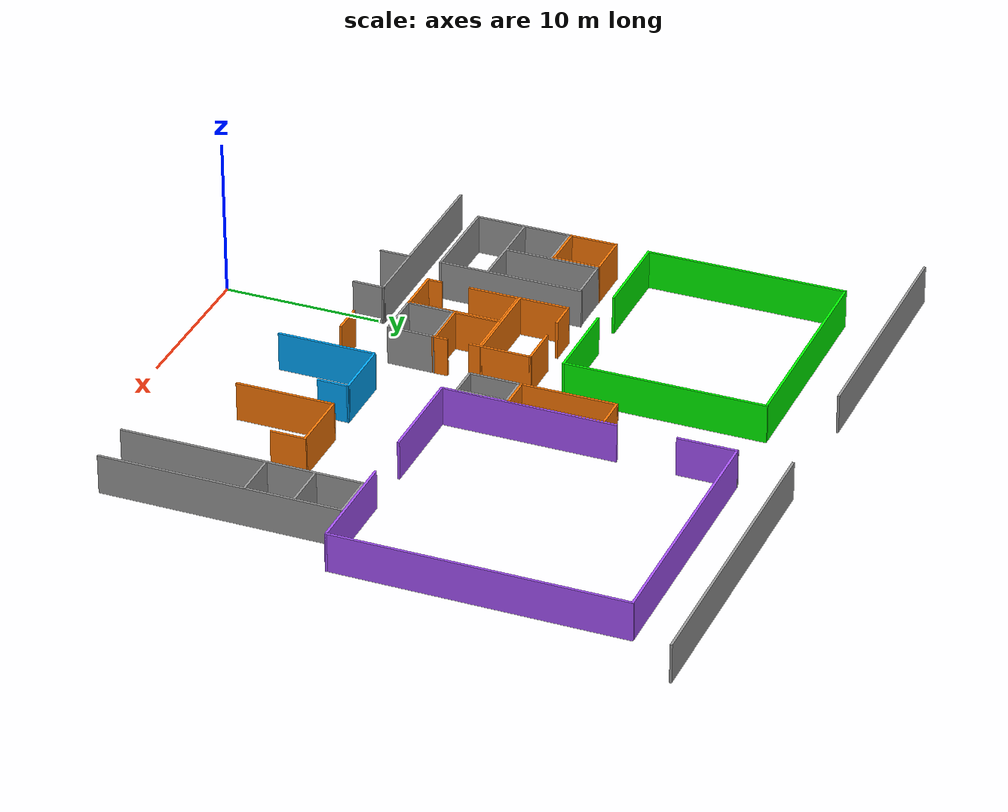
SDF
<sdf version="1.6">
 <model name="rebuilt_1">
  <pose>-2.12726 -2.76078 0 0 -0 0</pose>
  <link name="Wall_0">
   <collision name="Wall_0_Collision">
    <geometry><box><size>14 0.15 2.5</size></box></geometry>
    <pose>0 0 1.25 0 -0 0</pose>
   </collision>
   <visual name="Wall_0_Visual">
    <pose>0 0 1.25 0 -0 0</pose>
    <geometry><box><size>14 0.15 2.5</size></box></geometry>
    <material>
     <script><uri>file://media/materials/scripts/gazebo.material</uri><name>Gazebo/Grey</name></script>
     <ambient>0 1 0 1</ambient>
    </material>
    <meta><layer>0</layer></meta>
   </visual>
   <pose>-0.804476 39.0362 0 0 -0 3.14159</pose>
  </link>
  <link name="Wall_1">
   <collision name="Wall_1_Collision">
    <geometry><box><size>12.75 0.15 2.5</size></box></geometry>
    <pose>0 0 1.25 0 -0 0</pose>
   </collision>
   <visual name="Wall_1_Visual">
    <pose>0 0 1.25 0 -0 0</pose>
    <geometry><box><size>12.75 0.15 2.5</size></box></geometry>
    <material>
     <script><uri>file://media/materials/scripts/gazebo.material</uri><name>Gazebo/Grey</name></script>
     <ambient>0 1 0 1</ambient>
    </material>
    <meta><layer>0</layer></meta>
   </visual>
   <pose>-7.72948 32.7362 0 0 0 -1.5708</pose>
  </link>
  <link name="Wall_100">
   <collision name="Wall_100_Collision">
    <geometry><box><size>7 0.15 2.5</size></box></geometry>
    <pose>0 0 1.25 0 -0 0</pose>
   </collision>
   <visual name="Wall_100_Visual">
    <pose>0 0 1.25 0 -0 0</pose>
    <geometry><box><size>7 0.15 2.5</size></box></geometry>
    <material>
     <script><uri>file://media/materials/scripts/gazebo.material</uri><name>Gazebo/Grey</name></script>
     <ambient>0.666667 0.333333 1 1</ambient>
    </material>
    <meta><layer>0</layer></meta>
   </visual>
   <pose>24.6152 20.8683 0 0 -0 3.14159</pose>
  </link>
  <link name="Wall_102">
   <collision name="Wall_102_Collision">
    <geometry><box><size>4.16873 0.15 2.5</size></box></geometry>
    <pose>0 0 1.25 0 -0 0</pose>
   </collision>
   <visual name="Wall_102_Visual">
    <pose>0 0 1.25 0 -0 0</pose>
    <geometry><box><size>4.16873 0.15 2.5</size></box></geometry>
    <material>
     <script><uri>file://media/materials/scripts/gazebo.material</uri><name>Gazebo/Grey</name></script>
     <ambient>0.996078 0.47451 0.0196078 1</ambient>
    </material>
    <meta><layer>0</layer></meta>
   </visual>
   <pose>17.4391 15.7517 0 0 -0 0</pose>
  </link>
  <link name="Wall_105">
   <collision name="Wall_105_Collision">
    <geometry><box><size>6.25 0.15 2.5</size></box></geometry>
    <pose>0 0 1.25 0 -0 0</pose>
   </collision>
   <visual name="Wall_105_Visual">
    <pose>0 0 1.25 0 -0 0</pose>
    <geometry><box><size>6.25 0.15 2.5</size></box></geometry>
    <material>
     <script><uri>file://media/materials/scripts/gazebo.material</uri><name>Gazebo/Grey</name></script>
     <ambient>0.996078 0.47451 0.0196078 1</ambient>
    </material>
    <meta><layer>0</layer></meta>
   </visual>
   <pose>15.4298 12.7017 0 0 -0 1.5708</pose>
  </link>
  <link name="Wall_107">
   <collision name="Wall_107_Collision">
    <geometry><box><size>2.25 0.15 2.5</size></box></geometry>
    <pose>0 0 1.25 0 -0 0</pose>
   </collision>
   <visual name="Wall_107_Visual">
    <pose>0 0 1.25 0 -0 0</pose>
    <geometry><box><size>2.25 0.15 2.5</size></box></geometry>
    <material>
     <script><uri>file://media/materials/scripts/gazebo.material</uri><name>Gazebo/Grey</name></script>
     <ambient>0.996078 0.47451 0.0196078 1</ambient>
    </material>
    <meta><layer>0</layer></meta>
   </visual>
   <pose>19.4485 14.7017 0 0 0 -1.5708</pose>
  </link>
  <link name="Wall_11">
   <collision name="Wall_11_Collision">
    <geometry><box><size>18.3877 0.15 2.5</size></box></geometry>
    <pose>0 0 1.25 0 -0 0</pose>
   </collision>
   <visual name="Wall_11_Visual">
    <pose>0 0 1.25 0 -0 0</pose>
    <geometry><box><size>18.3877 0.15 2.5</size></box></geometry>
    <material>
     <script><uri>file://media/materials/scripts/gazebo.material</uri><name>Gazebo/Grey</name></script>
     <ambient>0.666667 0.333333 1 1</ambient>
    </material>
    <meta><layer>0</layer></meta>
   </visual>
   <pose>28.0372 29.9871 0 0 0 -1.57047</pose>
  </link>
  <link name="Wall_111">
   <collision name="Wall_111_Collision">
    <geometry><box><size>4.0365 0.15 2.5</size></box></geometry>
    <pose>0 0 1.25 0 -0 0</pose>
   </collision>
   <visual name="Wall_111_Visual">
    <pose>0 0 1.25 0 -0 0</pose>
    <geometry><box><size>4.0365 0.15 2.5</size></box></geometry>
    <material>
     <script><uri>file://media/materials/scripts/gazebo.material</uri><name>Gazebo/Grey</name></script>
     <ambient>0 0.666667 1 1</ambient>
    </material>
    <meta><layer>0</layer></meta>
   </visual>
   <pose>11.3657 15.726 0 0 -0 0.00469</pose>
  </link>
  <link name="Wall_114">
   <collision name="Wall_114_Collision">
    <geometry><box><size>6.25 0.15 2.5</size></box></geometry>
    <pose>0 0 1.25 0 -0 0</pose>
   </collision>
   <visual name="Wall_114_Visual">
    <pose>0 0 1.25 0 -0 0</pose>
    <geometry><box><size>6.25 0.15 2.5</size></box></geometry>
    <material>
     <script><uri>file://media/materials/scripts/gazebo.material</uri><name>Gazebo/Grey</name></script>
     <ambient>0 0.666667 1 1</ambient>
    </material>
    <meta><layer>0</layer></meta>
   </visual>
   <pose>9.40422 12.6669 0 0 -0 1.5708</pose>
  </link>
  <link name="Wall_118">
   <collision name="Wall_118_Collision">
    <geometry><box><size>2 0.15 2.5</size></box></geometry>
    <pose>0 0 1.25 0 -0 0</pose>
   </collision>
   <visual name="Wall_118_Visual">
    <pose>0 0 1.25 0 -0 0</pose>
    <geometry><box><size>2 0.15 2.5</size></box></geometry>
    <material>
     <script><uri>file://media/materials/scripts/gazebo.material</uri><name>Gazebo/Grey</name></script>
     <ambient>0 0.666667 1 1</ambient>
    </material>
    <meta><layer>0</layer></meta>
   </visual>
   <pose>13.3089 14.8101 0 0 0 -1.5708</pose>
  </link>
  <link name="Wall_124">
   <collision name="Wall_124_Collision">
    <geometry><box><size>3.13547 0.15 2.5</size></box></geometry>
    <pose>0 0 1.25 0 -0 0</pose>
   </collision>
   <visual name="Wall_124_Visual">
    <pose>0 0 1.25 0 -0 0</pose>
    <geometry><box><size>3.13547 0.15 2.5</size></box></geometry>
    <material>
     <script><uri>file://media/materials/scripts/gazebo.material</uri><name>Gazebo/Grey</name></script>
     <ambient>1 1 1 1</ambient>
    </material>
    <meta><layer>0</layer></meta>
   </visual>
   <pose>24.0269 20.7273 0 0 -0 0</pose>
  </link>
  <link name="Wall_13">
   <collision name="Wall_13_Collision">
    <geometry><box><size>11 0.15 2.5</size></box></geometry>
    <pose>0 0 1.25 0 -0 0</pose>
   </collision>
   <visual name="Wall_13_Visual">
    <pose>0 0 1.25 0 -0 0</pose>
    <geometry><box><size>11 0.15 2.5</size></box></geometry>
    <material>
     <script><uri>file://media/materials/scripts/gazebo.material</uri><name>Gazebo/Grey</name></script>
     <ambient>0.666667 0.333333 1 1</ambient>
    </material>
    <meta><layer>0</layer></meta>
   </visual>
   <pose>11.4402 26.2933 0 0 -0 1.5708</pose>
  </link>
  <link name="Wall_133">
   <collision name="Wall_133_Collision">
    <geometry><box><size>15.25 0.15 2.5</size></box></geometry>
    <pose>0 0 1.25 0 -0 0</pose>
   </collision>
   <visual name="Wall_133_Visual">
    <pose>0 0 1.25 0 -0 0</pose>
    <geometry><box><size>15.25 0.15 2.5</size></box></geometry>
    <material>
     <script><uri>file://media/materials/scripts/gazebo.material</uri><name>Gazebo/Grey</name></script>
     <ambient>1 1 1 1</ambient>
    </material>
    <meta><layer>0</layer></meta>
   </visual>
   <pose>22.5342 13.1773 0 0 0 -1.5708</pose>
  </link>
  <link name="Wall_135">
   <collision name="Wall_135_Collision">
    <geometry><box><size>15.25 0.15 2.5</size></box></geometry>
    <pose>0 0 1.25 0 -0 0</pose>
   </collision>
   <visual name="Wall_135_Visual">
    <pose>0 0 1.25 0 -0 0</pose>
    <geometry><box><size>15.25 0.15 2.5</size></box></geometry>
    <material>
     <script><uri>file://media/materials/scripts/gazebo.material</uri><name>Gazebo/Grey</name></script>
     <ambient>1 1 1 1</ambient>
    </material>
    <meta><layer>0</layer></meta>
   </visual>
   <pose>25.5196 13.1773 0 0 0 -1.5708</pose>
  </link>
  <link name="Wall_143">
   <collision name="Wall_143_Collision">
    <geometry><box><size>3 0.15 2.5</size></box></geometry>
    <pose>0 0 1.25 0 -0 0</pose>
   </collision>
   <visual name="Wall_143_Visual">
    <pose>0 0 1.25 0 -0 0</pose>
    <geometry><box><size>3 0.15 2.5</size></box></geometry>
    <material>
     <script><uri>file://media/materials/scripts/gazebo.material</uri><name>Gazebo/Grey</name></script>
     <ambient>1 1 1 1</ambient>
    </material>
    <meta><layer>0</layer></meta>
   </visual>
   <pose>24.0168 14.7218 0 0 -0 0</pose>
  </link>
  <link name="Wall_145">
   <collision name="Wall_145_Collision">
    <geometry><box><size>3 0.15 2.5</size></box></geometry>
    <pose>0 0 1.25 0 -0 0</pose>
   </collision>
   <visual name="Wall_145_Visual">
    <pose>0 0 1.25 0 -0 0</pose>
    <geometry><box><size>3 0.15 2.5</size></box></geometry>
    <material>
     <script><uri>file://media/materials/scripts/gazebo.material</uri><name>Gazebo/Grey</name></script>
     <ambient>1 1 1 1</ambient>
    </material>
    <meta><layer>0</layer></meta>
   </visual>
   <pose>23.9986 17.7839 0 0 -0 0</pose>
  </link>
  <link name="Wall_21">
   <collision name="Wall_21_Collision">
    <geometry><box><size>2.1197 0.15 2.5</size></box></geometry>
    <pose>0 0 1.25 0 -0 0</pose>
   </collision>
   <visual name="Wall_21_Visual">
    <pose>0 0 1.25 0 -0 0</pose>
    <geometry><box><size>2.1197 0.15 2.5</size></box></geometry>
    <material>
     <script><uri>file://media/materials/scripts/gazebo.material</uri><name>Gazebo/Grey</name></script>
     <ambient>1 1 1 1</ambient>
    </material>
    <meta><layer>0</layer></meta>
   </visual>
   <pose>10.3398 24.8691 0 0 -0 0</pose>
  </link>
  <link name="Wall_22">
   <collision name="Wall_22_Collision">
    <geometry><box><size>3.25 0.15 2.5</size></box></geometry>
    <pose>0 0 1.25 0 -0 0</pose>
   </collision>
   <visual name="Wall_22_Visual">
    <pose>0 0 1.25 0 -0 0</pose>
    <geometry><box><size>3.25 0.15 2.5</size></box></geometry>
    <material>
     <script><uri>file://media/materials/scripts/gazebo.material</uri><name>Gazebo/Grey</name></script>
     <ambient>1 1 1 1</ambient>
    </material>
    <meta><layer>0</layer></meta>
   </visual>
   <pose>11.3247 23.3191 0 0 0 -1.5708</pose>
  </link>
  <link name="Wall_23">
   <collision name="Wall_23_Collision">
    <geometry><box><size>2.1197 0.15 2.5</size></box></geometry>
    <pose>0 0 1.25 0 -0 0</pose>
   </collision>
   <visual name="Wall_23_Visual">
    <pose>0 0 1.25 0 -0 0</pose>
    <geometry><box><size>2.1197 0.15 2.5</size></box></geometry>
    <material>
     <script><uri>file://media/materials/scripts/gazebo.material</uri><name>Gazebo/Grey</name></script>
     <ambient>1 1 1 1</ambient>
    </material>
    <meta><layer>0</layer></meta>
   </visual>
   <pose>10.3398 21.7691 0 0 -0 3.14159</pose>
  </link>
  <link name="Wall_24">
   <collision name="Wall_24_Collision">
    <geometry><box><size>3.25 0.15 2.5</size></box></geometry>
    <pose>0 0 1.25 0 -0 0</pose>
   </collision>
   <visual name="Wall_24_Visual">
    <pose>0 0 1.25 0 -0 0</pose>
    <geometry><box><size>3.25 0.15 2.5</size></box></geometry>
    <material>
     <script><uri>file://media/materials/scripts/gazebo.material</uri><name>Gazebo/Grey</name></script>
     <ambient>1 1 1 1</ambient>
    </material>
    <meta><layer>0</layer></meta>
   </visual>
   <pose>9.35496 23.3191 0 0 -0 1.5708</pose>
  </link>
  <link name="Wall_26">
   <collision name="Wall_26_Collision">
    <geometry><box><size>2.18113 0.15 2.5</size></box></geometry>
    <pose>0 0 1.25 0 -0 0</pose>
   </collision>
   <visual name="Wall_26_Visual">
    <pose>0 0 1.25 0 -0 0</pose>
    <geometry><box><size>2.18113 0.15 2.5</size></box></geometry>
    <material>
     <script><uri>file://media/materials/scripts/gazebo.material</uri><name>Gazebo/Grey</name></script>
     <ambient>0.996078 0.47451 0.0196078 1</ambient>
    </material>
    <meta><layer>0</layer></meta>
   </visual>
   <pose>10.3615 30.9426 0 0 -0 0</pose>
  </link>
  <link name="Wall_27">
   <collision name="Wall_27_Collision">
    <geometry><box><size>6.07776 0.15 2.5</size></box></geometry>
    <pose>0 0 1.25 0 -0 0</pose>
   </collision>
   <visual name="Wall_27_Visual">
    <pose>0 0 1.25 0 -0 0</pose>
    <geometry><box><size>6.07776 0.15 2.5</size></box></geometry>
    <material>
     <script><uri>file://media/materials/scripts/gazebo.material</uri><name>Gazebo/Grey</name></script>
     <ambient>0.996078 0.47451 0.0196078 1</ambient>
    </material>
    <meta><layer>0</layer></meta>
   </visual>
   <pose>11.3771 27.9787 0 0 0 -1.56934</pose>
  </link>
  <link name="Wall_28">
   <collision name="Wall_28_Collision">
    <geometry><box><size>2.17693 0.15 2.5</size></box></geometry>
    <pose>0 0 1.25 0 -0 0</pose>
   </collision>
   <visual name="Wall_28_Visual">
    <pose>0 0 1.25 0 -0 0</pose>
    <geometry><box><size>2.17693 0.15 2.5</size></box></geometry>
    <material>
     <script><uri>file://media/materials/scripts/gazebo.material</uri><name>Gazebo/Grey</name></script>
     <ambient>0.996078 0.47451 0.0196078 1</ambient>
    </material>
    <meta><layer>0</layer></meta>
   </visual>
   <pose>10.368 25.0191 0 0 -0 3.14159</pose>
  </link>
  <link name="Wall_29">
   <collision name="Wall_29_Collision">
    <geometry><box><size>6.07345 0.15 2.5</size></box></geometry>
    <pose>0 0 1.25 0 -0 0</pose>
   </collision>
   <visual name="Wall_29_Visual">
    <pose>0 0 1.25 0 -0 0</pose>
    <geometry><box><size>6.07345 0.15 2.5</size></box></geometry>
    <material>
     <script><uri>file://media/materials/scripts/gazebo.material</uri><name>Gazebo/Grey</name></script>
     <ambient>0.996078 0.47451 0.0196078 1</ambient>
    </material>
    <meta><layer>0</layer></meta>
   </visual>
   <pose>9.34596 27.9808 0 0 -0 1.57225</pose>
  </link>
  <link name="Wall_3">
   <collision name="Wall_3_Collision">
    <geometry><box><size>12.75 0.15 2.5</size></box></geometry>
    <pose>0 0 1.25 0 -0 0</pose>
   </collision>
   <visual name="Wall_3_Visual">
    <pose>0 0 1.25 0 -0 0</pose>
    <geometry><box><size>12.75 0.15 2.5</size></box></geometry>
    <material>
     <script><uri>file://media/materials/scripts/gazebo.material</uri><name>Gazebo/Grey</name></script>
     <ambient>0 1 0 1</ambient>
    </material>
    <meta><layer>0</layer></meta>
   </visual>
   <pose>6.24681 32.7338 0 0 -0 1.5708</pose>
  </link>
  <link name="Wall_363">
   <collision name="Wall_363_Collision">
    <geometry><box><size>6.11662 0.15 2.5</size></box></geometry>
    <pose>0 0 1.25 0 -0 0</pose>
   </collision>
   <visual name="Wall_363_Visual">
    <pose>0 0 1.25 0 -0 0</pose>
    <geometry><box><size>6.11662 0.15 2.5</size></box></geometry>
    <material>
     <script><uri>file://media/materials/scripts/gazebo.material</uri><name>Gazebo/Grey</name></script>
     <ambient>1 1 1 1</ambient>
    </material>
    <meta><layer>0</layer></meta>
   </visual>
   <pose>-4.83119 15.2081 0 0 -0 0</pose>
  </link>
  <link name="Wall_364">
   <collision name="Wall_364_Collision">
    <geometry><box><size>9.25 0.15 2.5</size></box></geometry>
    <pose>0 0 1.25 0 -0 0</pose>
   </collision>
   <visual name="Wall_364_Visual">
    <pose>0 0 1.25 0 -0 0</pose>
    <geometry><box><size>9.25 0.15 2.5</size></box></geometry>
    <material>
     <script><uri>file://media/materials/scripts/gazebo.material</uri><name>Gazebo/Grey</name></script>
     <ambient>1 1 1 1</ambient>
    </material>
    <meta><layer>0</layer></meta>
   </visual>
   <pose>-1.84803 19.7581 0 0 -0 1.5708</pose>
  </link>
  <link name="Wall_365">
   <collision name="Wall_365_Collision">
    <geometry><box><size>3 0.15 2.5</size></box></geometry>
    <pose>0 0 1.25 0 -0 0</pose>
   </collision>
   <visual name="Wall_365_Visual">
    <pose>0 0 1.25 0 -0 0</pose>
    <geometry><box><size>3 0.15 2.5</size></box></geometry>
    <material>
     <script><uri>file://media/materials/scripts/gazebo.material</uri><name>Gazebo/Grey</name></script>
     <ambient>1 1 1 1</ambient>
    </material>
    <meta><layer>0</layer></meta>
   </visual>
   <pose>-3.31181 24.2693 0 0 -0 3.14159</pose>
  </link>
  <link name="Wall_366">
   <collision name="Wall_366_Collision">
    <geometry><box><size>6 0.15 2.5</size></box></geometry>
    <pose>0 0 1.25 0 -0 0</pose>
   </collision>
   <visual name="Wall_366_Visual">
    <pose>0 0 1.25 0 -0 0</pose>
    <geometry><box><size>6 0.15 2.5</size></box></geometry>
    <material>
     <script><uri>file://media/materials/scripts/gazebo.material</uri><name>Gazebo/Grey</name></script>
     <ambient>1 1 1 1</ambient>
    </material>
    <meta><layer>0</layer></meta>
   </visual>
   <pose>-4.73681 21.3443 0 0 0 -1.5708</pose>
  </link>
  <link name="Wall_369">
   <collision name="Wall_369_Collision">
    <geometry><box><size>6.19392 0.15 2.5</size></box></geometry>
    <pose>0 0 1.25 0 -0 0</pose>
   </collision>
   <visual name="Wall_369_Visual">
    <pose>0 0 1.25 0 -0 0</pose>
    <geometry><box><size>6.19392 0.15 2.5</size></box></geometry>
    <material>
     <script><uri>file://media/materials/scripts/gazebo.material</uri><name>Gazebo/Grey</name></script>
     <ambient>1 1 1 1</ambient>
    </material>
    <meta><layer>0</layer></meta>
   </visual>
   <pose>-7.80467 18.2688 0 0 -0 1.56759</pose>
  </link>
  <link name="Wall_370">
   <collision name="Wall_370_Collision">
    <geometry><box><size>3.11633 0.15 2.5</size></box></geometry>
    <pose>0 0 1.25 0 -0 0</pose>
   </collision>
   <visual name="Wall_370_Visual">
    <pose>0 0 1.25 0 -0 0</pose>
    <geometry><box><size>3.11633 0.15 2.5</size></box></geometry>
    <material>
     <script><uri>file://media/materials/scripts/gazebo.material</uri><name>Gazebo/Grey</name></script>
     <ambient>1 1 1 1</ambient>
    </material>
    <meta><layer>0</layer></meta>
   </visual>
   <pose>-6.3118 21.2326 0 0 -0 0</pose>
  </link>
  <link name="Wall_372">
   <collision name="Wall_372_Collision">
    <geometry><box><size>6 0.15 2.5</size></box></geometry>
    <pose>0 0 1.25 0 -0 0</pose>
   </collision>
   <visual name="Wall_372_Visual">
    <pose>0 0 1.25 0 -0 0</pose>
    <geometry><box><size>6 0.15 2.5</size></box></geometry>
    <material>
     <script><uri>file://media/materials/scripts/gazebo.material</uri><name>Gazebo/Grey</name></script>
     <ambient>1 1 1 1</ambient>
    </material>
    <meta><layer>0</layer></meta>
   </visual>
   <pose>-4.85567 18.2872 0 0 -0 0</pose>
  </link>
  <link name="Wall_375">
   <collision name="Wall_375_Collision">
    <geometry><box><size>12.2167 0.15 2.5</size></box></geometry>
    <pose>0 0 1.25 0 -0 0</pose>
   </collision>
   <visual name="Wall_375_Visual">
    <pose>0 0 1.25 0 -0 0</pose>
    <geometry><box><size>12.2167 0.15 2.5</size></box></geometry>
    <material>
     <script><uri>file://media/materials/scripts/gazebo.material</uri><name>Gazebo/Grey</name></script>
     <ambient>1 1 1 1</ambient>
    </material>
    <meta><layer>0</layer></meta>
   </visual>
   <pose>-3.8171 13.1773 0 0 -0 0</pose>
  </link>
  <link name="Wall_376">
   <collision name="Wall_376_Collision">
    <geometry><box><size>2.05556 0.15 2.5</size></box></geometry>
    <pose>0 0 1.25 0 -0 0</pose>
   </collision>
   <visual name="Wall_376_Visual">
    <pose>0 0 1.25 0 -0 0</pose>
    <geometry><box><size>2.05556 0.15 2.5</size></box></geometry>
    <material>
     <script><uri>file://media/materials/scripts/gazebo.material</uri><name>Gazebo/Grey</name></script>
     <ambient>1 1 1 1</ambient>
    </material>
    <meta><layer>0</layer></meta>
   </visual>
   <pose>2.20519 12.2246 0 0 0 -1.58243</pose>
  </link>
  <link name="Wall_385">
   <collision name="Wall_385_Collision">
    <geometry><box><size>2.0517 0.15 2.5</size></box></geometry>
    <pose>0 0 1.25 0 -0 0</pose>
   </collision>
   <visual name="Wall_385_Visual">
    <pose>0 0 1.25 0 -0 0</pose>
    <geometry><box><size>2.0517 0.15 2.5</size></box></geometry>
    <material>
     <script><uri>file://media/materials/scripts/gazebo.material</uri><name>Gazebo/Grey</name></script>
     <ambient>0.996078 0.47451 0.0196078 1</ambient>
    </material>
    <meta><layer>0</layer></meta>
   </visual>
   <pose>6.31998 12.6412 0 0 -0 0</pose>
  </link>
  <link name="Wall_48">
   <collision name="Wall_48_Collision">
    <geometry><box><size>3.25 0.15 2.5</size></box></geometry>
    <pose>0 0 1.25 0 -0 0</pose>
   </collision>
   <visual name="Wall_48_Visual">
    <pose>0 0 1.25 0 -0 0</pose>
    <geometry><box><size>3.25 0.15 2.5</size></box></geometry>
    <material>
     <script><uri>file://media/materials/scripts/gazebo.material</uri><name>Gazebo/Grey</name></script>
     <ambient>0.996078 0.47451 0.0196078 1</ambient>
    </material>
    <meta><layer>0</layer></meta>
   </visual>
   <pose>6.31761 22.802 0 0 0 -1.5708</pose>
  </link>
  <link name="Wall_49">
   <collision name="Wall_49_Collision">
    <geometry><box><size>6.15974 0.15 2.5</size></box></geometry>
    <pose>0 0 1.25 0 -0 0</pose>
   </collision>
   <visual name="Wall_49_Visual">
    <pose>0 0 1.25 0 -0 0</pose>
    <geometry><box><size>6.15974 0.15 2.5</size></box></geometry>
    <material>
     <script><uri>file://media/materials/scripts/gazebo.material</uri><name>Gazebo/Grey</name></script>
     <ambient>0.996078 0.47451 0.0196078 1</ambient>
    </material>
    <meta><layer>0</layer></meta>
   </visual>
   <pose>3.31274 21.252 0 0 -0 3.14159</pose>
  </link>
  <link name="Wall_5">
   <collision name="Wall_5_Collision">
    <geometry><box><size>0.16 0.15 2.5</size></box></geometry>
    <pose>0 0 1.25 0 -0 0</pose>
   </collision>
   <visual name="Wall_5_Visual">
    <pose>0 0 1.25 0 -0 0</pose>
    <geometry><box><size>0.16 0.15 2.5</size></box></geometry>
    <material>
     <script><uri>file://media/materials/scripts/gazebo.material</uri><name>Gazebo/Grey</name></script>
     <ambient>1 1 1 1</ambient>
    </material>
    <meta><layer>0</layer></meta>
   </visual>
   <pose>11.4293 39.1059 0 0 -0 0</pose>
  </link>
  <link name="Wall_50">
   <collision name="Wall_50_Collision">
    <geometry><box><size>3.25 0.15 2.5</size></box></geometry>
    <pose>0 0 1.25 0 -0 0</pose>
   </collision>
   <visual name="Wall_50_Visual">
    <pose>0 0 1.25 0 -0 0</pose>
    <geometry><box><size>3.25 0.15 2.5</size></box></geometry>
    <material>
     <script><uri>file://media/materials/scripts/gazebo.material</uri><name>Gazebo/Grey</name></script>
     <ambient>0.996078 0.47451 0.0196078 1</ambient>
    </material>
    <meta><layer>0</layer></meta>
   </visual>
   <pose>0.297395 22.802 0 0 -0 1.5708</pose>
  </link>
  <link name="Wall_52">
   <collision name="Wall_52_Collision">
    <geometry><box><size>3.15136 0.15 2.5</size></box></geometry>
    <pose>0 0 1.25 0 -0 0</pose>
   </collision>
   <visual name="Wall_52_Visual">
    <pose>0 0 1.25 0 -0 0</pose>
    <geometry><box><size>3.15136 0.15 2.5</size></box></geometry>
    <material>
     <script><uri>file://media/materials/scripts/gazebo.material</uri><name>Gazebo/Grey</name></script>
     <ambient>0.996078 0.47451 0.0196078 1</ambient>
    </material>
    <meta><layer>0</layer></meta>
   </visual>
   <pose>4.8127 21.1319 0 0 -0 0</pose>
  </link>
  <link name="Wall_54">
   <collision name="Wall_54_Collision">
    <geometry><box><size>3.15136 0.15 2.5</size></box></geometry>
    <pose>0 0 1.25 0 -0 0</pose>
   </collision>
   <visual name="Wall_54_Visual">
    <pose>0 0 1.25 0 -0 0</pose>
    <geometry><box><size>3.15136 0.15 2.5</size></box></geometry>
    <material>
     <script><uri>file://media/materials/scripts/gazebo.material</uri><name>Gazebo/Grey</name></script>
     <ambient>0.996078 0.47451 0.0196078 1</ambient>
    </material>
    <meta><layer>0</layer></meta>
   </visual>
   <pose>4.8127 18.2819 0 0 -0 3.14159</pose>
  </link>
  <link name="Wall_55">
   <collision name="Wall_55_Collision">
    <geometry><box><size>3 0.15 2.5</size></box></geometry>
    <pose>0 0 1.25 0 -0 0</pose>
   </collision>
   <visual name="Wall_55_Visual">
    <pose>0 0 1.25 0 -0 0</pose>
    <geometry><box><size>3 0.15 2.5</size></box></geometry>
    <material>
     <script><uri>file://media/materials/scripts/gazebo.material</uri><name>Gazebo/Grey</name></script>
     <ambient>0.996078 0.47451 0.0196078 1</ambient>
    </material>
    <meta><layer>0</layer></meta>
   </visual>
   <pose>3.31202 19.7069 0 0 -0 1.5708</pose>
  </link>
  <link name="Wall_566">
   <collision name="Wall_566_Collision">
    <geometry><box><size>16 0.15 2.5</size></box></geometry>
    <pose>0 0 1.25 0 -0 0</pose>
   </collision>
   <visual name="Wall_566_Visual">
    <pose>0 0 1.25 0 -0 0</pose>
    <geometry><box><size>16 0.15 2.5</size></box></geometry>
    <material>
     <script><uri>file://media/materials/scripts/gazebo.material</uri><name>Gazebo/Grey</name></script>
     <ambient>1 1 1 1</ambient>
    </material>
    <meta><layer>0</layer></meta>
   </visual>
   <pose>-4.27726 42.5544 0 0 -0 0</pose>
  </link>
  <link name="Wall_568">
   <collision name="Wall_568_Collision">
    <geometry><box><size>19.6434 0.15 2.5</size></box></geometry>
    <pose>0 0 1.25 0 -0 0</pose>
   </collision>
   <visual name="Wall_568_Visual">
    <pose>0 0 1.25 0 -0 0</pose>
    <geometry><box><size>19.6434 0.15 2.5</size></box></geometry>
    <material>
     <script><uri>file://media/materials/scripts/gazebo.material</uri><name>Gazebo/Grey</name></script>
     <ambient>1 1 1 1</ambient>
    </material>
    <meta><layer>0</layer></meta>
   </visual>
   <pose>21.22 42.4729 0 0 0 -0.001765</pose>
  </link>
  <link name="Wall_59">
   <collision name="Wall_59_Collision">
    <geometry><box><size>3.1467 0.15 2.5</size></box></geometry>
    <pose>0 0 1.25 0 -0 0</pose>
   </collision>
   <visual name="Wall_59_Visual">
    <pose>0 0 1.25 0 -0 0</pose>
    <geometry><box><size>3.1467 0.15 2.5</size></box></geometry>
    <material>
     <script><uri>file://media/materials/scripts/gazebo.material</uri><name>Gazebo/Grey</name></script>
     <ambient>1 1 1 1</ambient>
    </material>
    <meta><layer>0</layer></meta>
   </visual>
   <pose>4.82027 18.1671 0 0 -0 0.006117</pose>
  </link>
  <link name="Wall_6">
   <collision name="Wall_6_Collision">
    <geometry><box><size>16.75 0.15 2.5</size></box></geometry>
    <pose>0 0 1.25 0 -0 0</pose>
   </collision>
   <visual name="Wall_6_Visual">
    <pose>0 0 1.25 0 -0 0</pose>
    <geometry><box><size>16.75 0.15 2.5</size></box></geometry>
    <material>
     <script><uri>file://media/materials/scripts/gazebo.material</uri><name>Gazebo/Grey</name></script>
     <ambient>0.666667 0.333333 1 1</ambient>
    </material>
    <meta><layer>0</layer></meta>
   </visual>
   <pose>19.7342 39.1059 0 0 -0 0</pose>
  </link>
  <link name="Wall_60">
   <collision name="Wall_60_Collision">
    <geometry><box><size>3.03425 0.15 2.5</size></box></geometry>
    <pose>0 0 1.25 0 -0 0</pose>
   </collision>
   <visual name="Wall_60_Visual">
    <pose>0 0 1.25 0 -0 0</pose>
    <geometry><box><size>3.03425 0.15 2.5</size></box></geometry>
    <material>
     <script><uri>file://media/materials/scripts/gazebo.material</uri><name>Gazebo/Grey</name></script>
     <ambient>1 1 1 1</ambient>
    </material>
    <meta><layer>0</layer></meta>
   </visual>
   <pose>6.31401 16.7342 0 0 0 -1.58033</pose>
  </link>
  <link name="Wall_61">
   <collision name="Wall_61_Collision">
    <geometry><box><size>3.1467 0.15 2.5</size></box></geometry>
    <pose>0 0 1.25 0 -0 0</pose>
   </collision>
   <visual name="Wall_61_Visual">
    <pose>0 0 1.25 0 -0 0</pose>
    <geometry><box><size>3.1467 0.15 2.5</size></box></geometry>
    <material>
     <script><uri>file://media/materials/scripts/gazebo.material</uri><name>Gazebo/Grey</name></script>
     <ambient>1 1 1 1</ambient>
    </material>
    <meta><layer>0</layer></meta>
   </visual>
   <pose>4.79277 15.283 0 0 0 -3.13548</pose>
  </link>
  <link name="Wall_62">
   <collision name="Wall_62_Collision">
    <geometry><box><size>3.03425 0.15 2.5</size></box></geometry>
    <pose>0 0 1.25 0 -0 0</pose>
   </collision>
   <visual name="Wall_62_Visual">
    <pose>0 0 1.25 0 -0 0</pose>
    <geometry><box><size>3.03425 0.15 2.5</size></box></geometry>
    <material>
     <script><uri>file://media/materials/scripts/gazebo.material</uri><name>Gazebo/Grey</name></script>
     <ambient>1 1 1 1</ambient>
    </material>
    <meta><layer>0</layer></meta>
   </visual>
   <pose>3.29903 16.7159 0 0 -0 1.56126</pose>
  </link>
  <link name="Wall_662">
   <collision name="Wall_662_Collision">
    <geometry><box><size>2 0.15 2.5</size></box></geometry>
    <pose>0 0 1.25 0 -0 0</pose>
   </collision>
   <visual name="Wall_662_Visual">
    <pose>0 0 1.25 0 -0 0</pose>
    <geometry><box><size>2 0.15 2.5</size></box></geometry>
    <material>
     <script><uri>file://media/materials/scripts/gazebo.material</uri><name>Gazebo/Grey</name></script>
     <ambient>1 1 1 1</ambient>
    </material>
    <meta><layer>0</layer></meta>
   </visual>
   <pose>-1.80576 12.2495 0 0 0 -1.5708</pose>
  </link>
  <link name="Wall_70">
   <collision name="Wall_70_Collision">
    <geometry><box><size>3.09442 0.15 2.5</size></box></geometry>
    <pose>0 0 1.25 0 -0 0</pose>
   </collision>
   <visual name="Wall_70_Visual">
    <pose>0 0 1.25 0 -0 0</pose>
    <geometry><box><size>3.09442 0.15 2.5</size></box></geometry>
    <material>
     <script><uri>file://media/materials/scripts/gazebo.material</uri><name>Gazebo/Grey</name></script>
     <ambient>0.996078 0.47451 0.0196078 1</ambient>
    </material>
    <meta><layer>0</layer></meta>
   </visual>
   <pose>1.79225 21.1501 0 0 -0 0.001412</pose>
  </link>
  <link name="Wall_71">
   <collision name="Wall_71_Collision">
    <geometry><box><size>6.00503 0.15 2.5</size></box></geometry>
    <pose>0 0 1.25 0 -0 0</pose>
   </collision>
   <visual name="Wall_71_Visual">
    <pose>0 0 1.25 0 -0 0</pose>
    <geometry><box><size>6.00503 0.15 2.5</size></box></geometry>
    <material>
     <script><uri>file://media/materials/scripts/gazebo.material</uri><name>Gazebo/Grey</name></script>
     <ambient>0.996078 0.47451 0.0196078 1</ambient>
    </material>
    <meta><layer>0</layer></meta>
   </visual>
   <pose>3.20062 18.2087 0 0 0 -1.5708</pose>
  </link>
  <link name="Wall_72">
   <collision name="Wall_72_Collision">
    <geometry><box><size>3.09442 0.15 2.5</size></box></geometry>
    <pose>0 0 1.25 0 -0 0</pose>
   </collision>
   <visual name="Wall_72_Visual">
    <pose>0 0 1.25 0 -0 0</pose>
    <geometry><box><size>3.09442 0.15 2.5</size></box></geometry>
    <material>
     <script><uri>file://media/materials/scripts/gazebo.material</uri><name>Gazebo/Grey</name></script>
     <ambient>0.996078 0.47451 0.0196078 1</ambient>
    </material>
    <meta><layer>0</layer></meta>
   </visual>
   <pose>1.79225 15.2951 0 0 0 -3.14018</pose>
  </link>
  <link name="Wall_75">
   <collision name="Wall_75_Collision">
    <geometry><box><size>3.04192 0.15 2.5</size></box></geometry>
    <pose>0 0 1.25 0 -0 0</pose>
   </collision>
   <visual name="Wall_75_Visual">
    <pose>0 0 1.25 0 -0 0</pose>
    <geometry><box><size>3.04192 0.15 2.5</size></box></geometry>
    <material>
     <script><uri>file://media/materials/scripts/gazebo.material</uri><name>Gazebo/Grey</name></script>
     <ambient>0.996078 0.47451 0.0196078 1</ambient>
    </material>
    <meta><layer>0</layer></meta>
   </visual>
   <pose>-6.35787 24.2942 0 0 0 -0.002899</pose>
  </link>
  <link name="Wall_76">
   <collision name="Wall_76_Collision">
    <geometry><box><size>3.06706 0.15 2.5</size></box></geometry>
    <pose>0 0 1.25 0 -0 0</pose>
   </collision>
   <visual name="Wall_76_Visual">
    <pose>0 0 1.25 0 -0 0</pose>
    <geometry><box><size>3.06706 0.15 2.5</size></box></geometry>
    <material>
     <script><uri>file://media/materials/scripts/gazebo.material</uri><name>Gazebo/Grey</name></script>
     <ambient>0.996078 0.47451 0.0196078 1</ambient>
    </material>
    <meta><layer>0</layer></meta>
   </visual>
   <pose>-4.90353 22.8231 0 0 0 -1.5708</pose>
  </link>
  <link name="Wall_77">
   <collision name="Wall_77_Collision">
    <geometry><box><size>3.04191 0.15 2.5</size></box></geometry>
    <pose>0 0 1.25 0 -0 0</pose>
   </collision>
   <visual name="Wall_77_Visual">
    <pose>0 0 1.25 0 -0 0</pose>
    <geometry><box><size>3.04191 0.15 2.5</size></box></geometry>
    <material>
     <script><uri>file://media/materials/scripts/gazebo.material</uri><name>Gazebo/Grey</name></script>
     <ambient>0.996078 0.47451 0.0196078 1</ambient>
    </material>
    <meta><layer>0</layer></meta>
   </visual>
   <pose>-6.34948 21.3688 0 0 -0 3.13869</pose>
  </link>
  <link name="Wall_78">
   <collision name="Wall_78_Collision">
    <geometry><box><size>3.07544 0.15 2.5</size></box></geometry>
    <pose>0 0 1.25 0 -0 0</pose>
   </collision>
   <visual name="Wall_78_Visual">
    <pose>0 0 1.25 0 -0 0</pose>
    <geometry><box><size>3.07544 0.15 2.5</size></box></geometry>
    <material>
     <script><uri>file://media/materials/scripts/gazebo.material</uri><name>Gazebo/Grey</name></script>
     <ambient>0.996078 0.47451 0.0196078 1</ambient>
    </material>
    <meta><layer>0</layer></meta>
   </visual>
   <pose>-7.79544 22.8273 0 0 -0 1.5708</pose>
  </link>
  <link name="Wall_80">
   <collision name="Wall_80_Collision">
    <geometry><box><size>6 0.15 2.5</size></box></geometry>
    <pose>0 0 1.25 0 -0 0</pose>
   </collision>
   <visual name="Wall_80_Visual">
    <pose>0 0 1.25 0 -0 0</pose>
    <geometry><box><size>6 0.15 2.5</size></box></geometry>
    <material>
     <script><uri>file://media/materials/scripts/gazebo.material</uri><name>Gazebo/Grey</name></script>
     <ambient>0 1 0 1</ambient>
    </material>
    <meta><layer>0</layer></meta>
   </visual>
   <pose>-4.80448 26.4362 0 0 -0 0</pose>
  </link>
  <link name="Wall_82">
   <collision name="Wall_82_Collision">
    <geometry><box><size>5.62867 0.15 2.5</size></box></geometry>
    <pose>0 0 1.25 0 -0 0</pose>
   </collision>
   <visual name="Wall_82_Visual">
    <pose>0 0 1.25 0 -0 0</pose>
    <geometry><box><size>5.62867 0.15 2.5</size></box></geometry>
    <material>
     <script><uri>file://media/materials/scripts/gazebo.material</uri><name>Gazebo/Grey</name></script>
     <ambient>0 1 0 1</ambient>
    </material>
    <meta><layer>0</layer></meta>
   </visual>
   <pose>3.50986 26.435 0 0 -0 3.14116</pose>
  </link>
  <link name="Wall_84">
   <collision name="Wall_84_Collision">
    <geometry><box><size>1.90974 0.15 2.5</size></box></geometry>
    <pose>0 0 1.25 0 -0 0</pose>
   </collision>
   <visual name="Wall_84_Visual">
    <pose>0 0 1.25 0 -0 0</pose>
    <geometry><box><size>1.90974 0.15 2.5</size></box></geometry>
    <material>
     <script><uri>file://media/materials/scripts/gazebo.material</uri><name>Gazebo/Grey</name></script>
     <ambient>0.996078 0.47451 0.0196078 1</ambient>
    </material>
    <meta><layer>0</layer></meta>
   </visual>
   <pose>1.18774 24.352 0 0 -0 0</pose>
  </link>
  <link name="Wall_86">
   <collision name="Wall_86_Collision">
    <geometry><box><size>2.75 0.15 2.5</size></box></geometry>
    <pose>0 0 1.25 0 -0 0</pose>
   </collision>
   <visual name="Wall_86_Visual">
    <pose>0 0 1.25 0 -0 0</pose>
    <geometry><box><size>2.75 0.15 2.5</size></box></geometry>
    <material>
     <script><uri>file://media/materials/scripts/gazebo.material</uri><name>Gazebo/Grey</name></script>
     <ambient>0.996078 0.47451 0.0196078 1</ambient>
    </material>
    <meta><layer>0</layer></meta>
   </visual>
   <pose>5.01761 24.352 0 0 -0 3.14159</pose>
  </link>
  <link name="Wall_88">
   <collision name="Wall_88_Collision">
    <geometry><box><size>3.25 0.15 2.5</size></box></geometry>
    <pose>0 0 1.25 0 -0 0</pose>
   </collision>
   <visual name="Wall_88_Visual">
    <pose>0 0 1.25 0 -0 0</pose>
    <geometry><box><size>3.25 0.15 2.5</size></box></geometry>
    <material>
     <script><uri>file://media/materials/scripts/gazebo.material</uri><name>Gazebo/Grey</name></script>
     <ambient>0.996078 0.47451 0.0196078 1</ambient>
    </material>
    <meta><layer>0</layer></meta>
   </visual>
   <pose>0.320128 19.598 0 0 0 -1.5708</pose>
  </link>
  <link name="Wall_90">
   <collision name="Wall_90_Collision">
    <geometry><box><size>1 0.15 2.5</size></box></geometry>
    <pose>0 0 1.25 0 -0 0</pose>
   </collision>
   <visual name="Wall_90_Visual">
    <pose>0 0 1.25 0 -0 0</pose>
    <geometry><box><size>1 0.15 2.5</size></box></geometry>
    <material>
     <script><uri>file://media/materials/scripts/gazebo.material</uri><name>Gazebo/Grey</name></script>
     <ambient>0.996078 0.47451 0.0196078 1</ambient>
    </material>
    <meta><layer>0</layer></meta>
   </visual>
   <pose>0.320128 15.718 0 0 -0 1.5708</pose>
  </link>
  <link name="Wall_92">
   <collision name="Wall_92_Collision">
    <geometry><box><size>0.75 0.15 2.5</size></box></geometry>
    <pose>0 0 1.25 0 -0 0</pose>
   </collision>
   <visual name="Wall_92_Visual">
    <pose>0 0 1.25 0 -0 0</pose>
    <geometry><box><size>0.75 0.15 2.5</size></box></geometry>
    <material>
     <script><uri>file://media/materials/scripts/gazebo.material</uri><name>Gazebo/Grey</name></script>
     <ambient>0.996078 0.47451 0.0196078 1</ambient>
    </material>
    <meta><layer>0</layer></meta>
   </visual>
   <pose>6.31338 20.8319 0 0 0 -1.5708</pose>
  </link>
  <link name="Wall_94">
   <collision name="Wall_94_Collision">
    <geometry><box><size>1 0.15 2.5</size></box></geometry>
    <pose>0 0 1.25 0 -0 0</pose>
   </collision>
   <visual name="Wall_94_Visual">
    <pose>0 0 1.25 0 -0 0</pose>
    <geometry><box><size>1 0.15 2.5</size></box></geometry>
    <material>
     <script><uri>file://media/materials/scripts/gazebo.material</uri><name>Gazebo/Grey</name></script>
     <ambient>0.996078 0.47451 0.0196078 1</ambient>
    </material>
    <meta><layer>0</layer></meta>
   </visual>
   <pose>6.32775 18.6013 0 0 -0 1.5708</pose>
  </link>
  <link name="Wall_96">
   <collision name="Wall_96_Collision">
    <geometry><box><size>3.75 0.15 2.5</size></box></geometry>
    <pose>0 0 1.25 0 -0 0</pose>
   </collision>
   <visual name="Wall_96_Visual">
    <pose>0 0 1.25 0 -0 0</pose>
    <geometry><box><size>3.75 0.15 2.5</size></box></geometry>
    <material>
     <script><uri>file://media/materials/scripts/gazebo.material</uri><name>Gazebo/Grey</name></script>
     <ambient>0.666667 0.333333 1 1</ambient>
    </material>
    <meta><layer>0</layer></meta>
   </visual>
   <pose>11.4343 37.3059 0 0 0 -1.5708</pose>
  </link>
  <link name="Wall_98">
   <collision name="Wall_98_Collision">
    <geometry><box><size>6.5 0.15 2.5</size></box></geometry>
    <pose>0 0 1.25 0 -0 0</pose>
   </collision>
   <visual name="Wall_98_Visual">
    <pose>0 0 1.25 0 -0 0</pose>
    <geometry><box><size>6.5 0.15 2.5</size></box></geometry>
    <material>
     <script><uri>file://media/materials/scripts/gazebo.material</uri><name>Gazebo/Grey</name></script>
     <ambient>0.666667 0.333333 1 1</ambient>
    </material>
    <meta><layer>0</layer></meta>
   </visual>
   <pose>14.6152 20.8683 0 0 -0 0</pose>
  </link>
  <static>1</static>
 </model>
</sdf>
